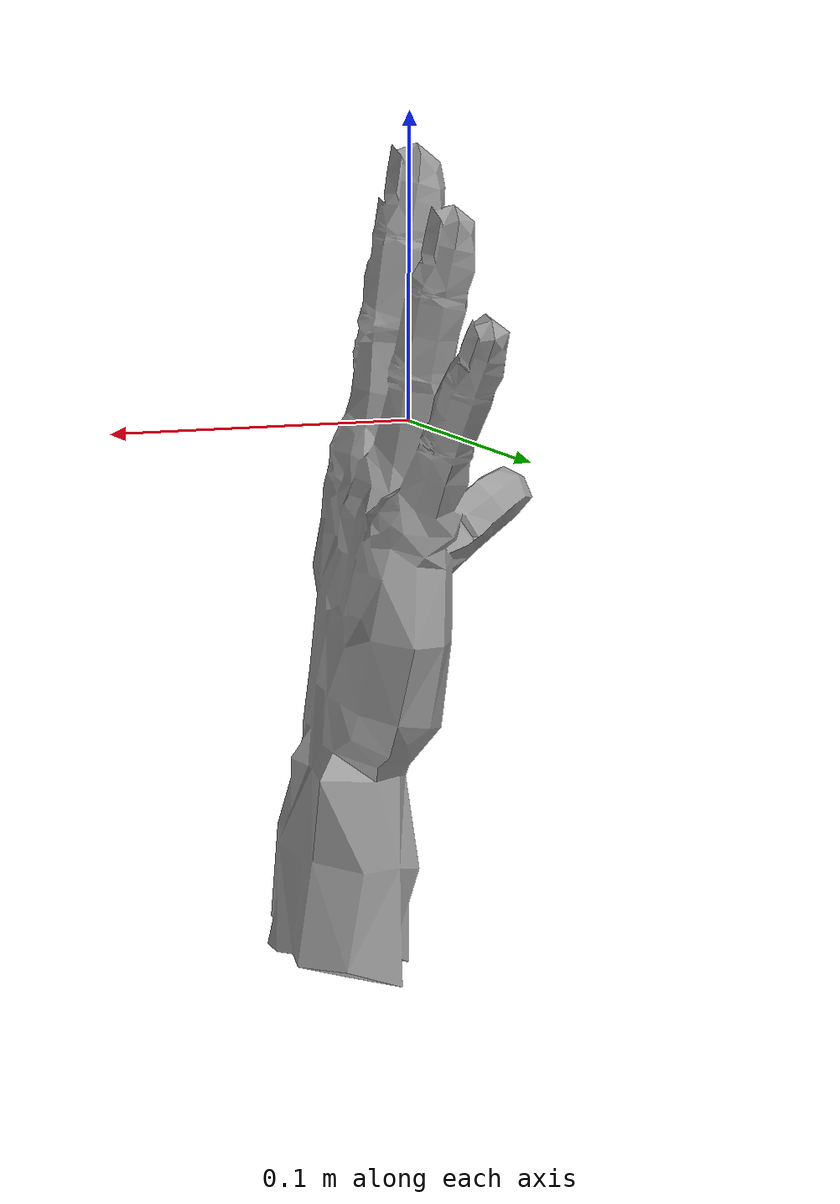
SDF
<?xml version='1.0'?>
<sdf version="1.6">
<model name="hand">
<pose>0 0 0 0 0 0</pose>
<static>true</static>
    <link name="link">
      <inertial>
        <mass>0.0562</mass>
        <inertia>
          <ixx>0.293</ixx>
          <ixy>0.0</ixy>
          <ixz>0.0</ixz>
          <iyy>0.005</iyy>
          <iyz>0.0</iyz>
          <izz>0.297</izz>
        </inertia>
      </inertial>
      <collision name="collision">
        <geometry>
	  <mesh>
		  <uri>model://hand/Hand002.dae</uri>
          </mesh>
        </geometry>
      </collision>
      <visual name="visual">
        <geometry>
          <mesh>
		  <uri>model://hand/Hand002.dae</uri>
          </mesh>
  	</geometry>
	<material>
	<script>
		<uri>model://hand/materials/test_texture.material</uri>
		<name>TestTexture</name>
	</script>
	</material>
      </visual>
    </link>
  </model>
</sdf>
